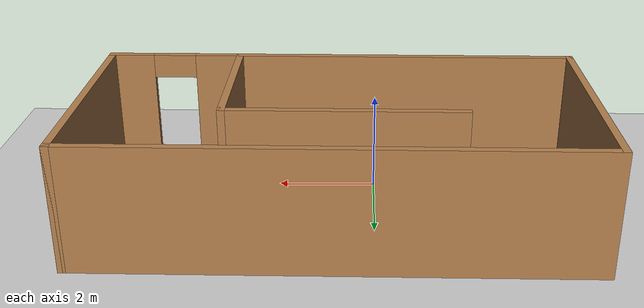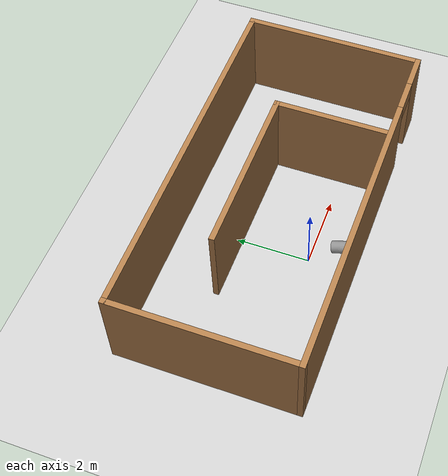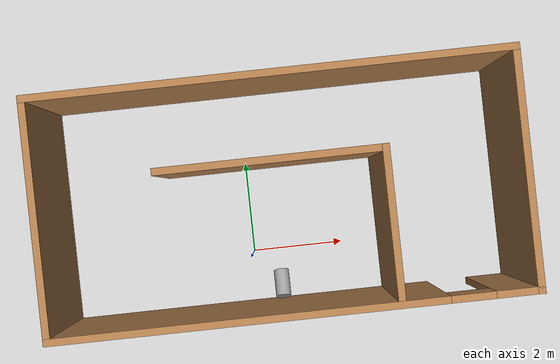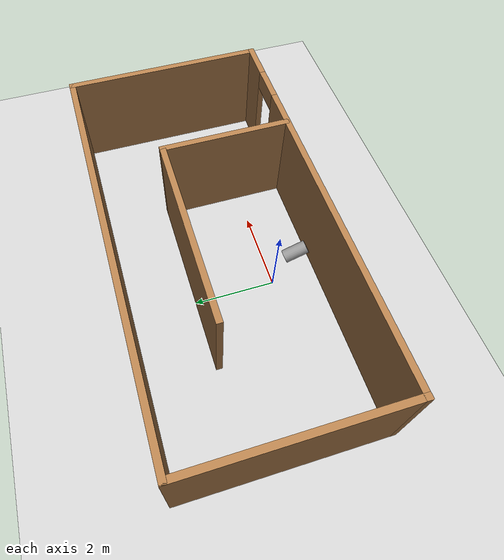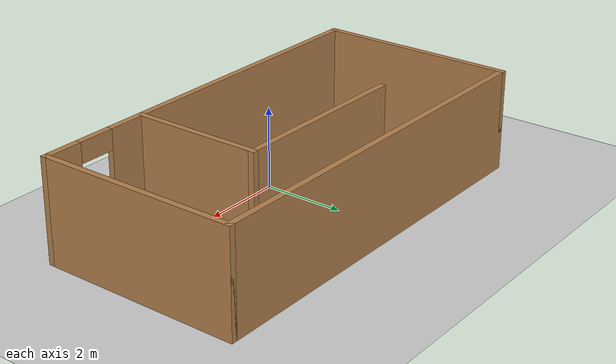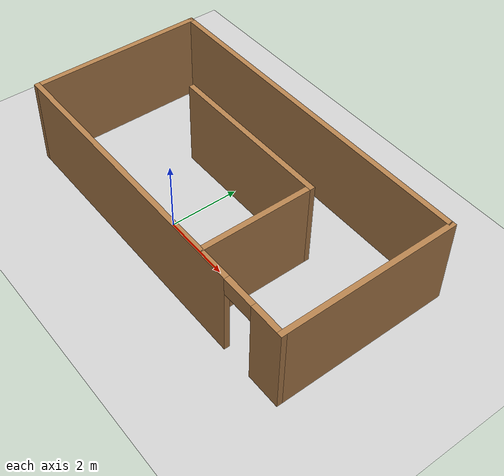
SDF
<sdf version="1.6">
 <world name="default">
  <light name="sun" type="directional">
   <pose>0 0 10 0 -0 0</pose>
   <diffuse>0.8 0.8 0.8 1</diffuse>
   <specular>0.2 0.2 0.2 1</specular>
   <attenuation>
    <range>1000</range>
    <constant>0.9</constant>
    <linear>0.01</linear>
    <quadratic>0.001</quadratic>
   </attenuation>
   <direction>-0.5 0.1 -0.9</direction>
  </light>
  <model name="ground_plane">
   <static>1</static>
   <link name="link">
    <collision name="collision">
     <geometry><plane><normal>0 0 1</normal><size>100 100</size></plane></geometry>
     <surface>
      <contact><collide_bitmask>65535</collide_bitmask></contact>
      <friction><ode><mu>100</mu><mu2>50</mu2></ode></friction>
     </surface>
    </collision>
    <visual name="visual">
     <cast_shadows>0</cast_shadows>
     <geometry><plane><normal>0 0 1</normal><size>100 100</size></plane></geometry>
     <material>
      <script><uri>file://media/materials/scripts/gazebo.material</uri><name>Gazebo/Grey</name></script>
     </material>
    </visual>
   </link>
  </model>
  <gravity>0 0 -9.8</gravity>
  <magnetic_field>6e-06 2.3e-05 -4.2e-05</magnetic_field>
  <atmosphere type="adiabatic"/>
  <physics name="default_physics" default="0" type="ode">
   <max_step_size>0.001</max_step_size>
   <real_time_factor>1</real_time_factor>
   <real_time_update_rate>1000</real_time_update_rate>
  </physics>
  <scene><ambient>0.4 0.4 0.4 1</ambient><background>0.7 0.7 0.7 1</background><shadows>1</shadows></scene>
  <audio><device>default</device></audio>
  <spherical_coordinates>
   <surface_model>EARTH_WGS84</surface_model>
   <latitude_deg>0</latitude_deg>
   <longitude_deg>0</longitude_deg>
   <elevation>0</elevation>
   <heading_deg>0</heading_deg>
  </spherical_coordinates>
  <model name="Room">
   <pose>0.747122 1.21423 0 0 -0 0</pose>
   <link name="Wall_2">
    <collision name="Wall_2_Collision">
     <geometry><box><size>10 0.15 2.5</size></box></geometry>
     <pose>0 0 1.25 0 -0 0</pose>
    </collision>
    <visual name="Wall_2_Visual">
     <pose>0 0 1.25 0 -0 0</pose>
     <geometry><box><size>10 0.15 2.5</size></box></geometry>
     <material>
      <script><uri>file://media/materials/scripts/gazebo.material</uri><name>Gazebo/Wood</name></script>
      <ambient>1 1 1 1</ambient>
     </material>
     <meta><layer>0</layer></meta>
    </visual>
    <pose>0 2.425 0 0 -0 0</pose>
   </link>
   <link name="Wall_3">
    <collision name="Wall_3_Collision">
     <geometry><box><size>5 0.15 2.5</size></box></geometry>
     <pose>0 0 1.25 0 -0 0</pose>
    </collision>
    <visual name="Wall_3_Visual">
     <pose>0 0 1.25 0 -0 0</pose>
     <geometry><box><size>5 0.15 2.5</size></box></geometry>
     <material>
      <script><uri>file://media/materials/scripts/gazebo.material</uri><name>Gazebo/Wood</name></script>
      <ambient>1 1 1 1</ambient>
     </material>
     <meta><layer>0</layer></meta>
    </visual>
    <pose>4.925 0 0 0 -0 -1.5708</pose>
   </link>
   <link name="Wall_4">
    <pose>0 -2.425 0 0 -0 3.14159</pose>
    <visual name="Wall_4_Visual_0">
     <pose>-4.51185 0 1.25 0 -0 0</pose>
     <geometry><box><size>0.976297 0.15 2.5</size></box></geometry>
     <material>
      <script><uri>file://media/materials/scripts/gazebo.material</uri><name>Gazebo/Wood</name></script>
      <ambient>1 1 1 1</ambient>
     </material>
     <meta><layer>0</layer></meta>
    </visual>
    <collision name="Wall_4_Collision_0">
     <geometry><box><size>0.976297 0.15 2.5</size></box></geometry>
     <pose>-4.51185 0 1.25 0 -0 0</pose>
    </collision>
    <visual name="Wall_4_Visual_1">
     <pose>0.938149 0 1.25 0 -0 0</pose>
     <geometry><box><size>8.1237 0.15 2.5</size></box></geometry>
     <material>
      <script><uri>file://media/materials/scripts/gazebo.material</uri><name>Gazebo/Wood</name></script>
      <ambient>1 1 1 1</ambient>
     </material>
     <meta><layer>0</layer></meta>
    </visual>
    <collision name="Wall_4_Collision_1">
     <geometry><box><size>8.1237 0.15 2.5</size></box></geometry>
     <pose>0.938149 0 1.25 0 -0 0</pose>
    </collision>
    <visual name="Wall_4_Visual_2">
     <pose>-3.5737 0 2.25 0 -0 0</pose>
     <geometry><box><size>0.9 0.15 0.5</size></box></geometry>
     <material>
      <script><uri>file://media/materials/scripts/gazebo.material</uri><name>Gazebo/Wood</name></script>
      <ambient>1 1 1 1</ambient>
     </material>
     <meta><layer>0</layer></meta>
    </visual>
    <collision name="Wall_4_Collision_2">
     <geometry><box><size>0.9 0.15 0.5</size></box></geometry>
     <pose>-3.5737 0 2.25 0 -0 0</pose>
    </collision>
   </link>
   <link name="Wall_5">
    <collision name="Wall_5_Collision">
     <geometry><box><size>5 0.15 2.5</size></box></geometry>
     <pose>0 0 1.25 0 -0 0</pose>
    </collision>
    <visual name="Wall_5_Visual">
     <pose>0 0 1.25 0 -0 0</pose>
     <geometry><box><size>5 0.15 2.5</size></box></geometry>
     <material>
      <script><uri>file://media/materials/scripts/gazebo.material</uri><name>Gazebo/Wood</name></script>
      <ambient>1 1 1 1</ambient>
     </material>
     <meta><layer>0</layer></meta>
    </visual>
    <pose>-4.925 0 0 0 -0 1.5708</pose>
   </link>
   <link name="Wall_7">
    <collision name="Wall_7_Collision">
     <geometry><box><size>3.25 0.15 2.5</size></box></geometry>
     <pose>0 0 1.25 0 -0 0</pose>
    </collision>
    <visual name="Wall_7_Visual">
     <pose>0 0 1.25 0 -0 0</pose>
     <geometry><box><size>3.25 0.15 2.5</size></box></geometry>
     <material>
      <script><uri>file://media/materials/scripts/gazebo.material</uri><name>Gazebo/Wood</name></script>
      <ambient>1 1 1 1</ambient>
     </material>
     <meta><layer>0</layer></meta>
    </visual>
    <pose>2.15808 -0.837552 0 0 -0 1.5708</pose>
   </link>
   <link name="Wall_8">
    <collision name="Wall_8_Collision">
     <geometry><box><size>4.75 0.15 2.5</size></box></geometry>
     <pose>0 0 1.25 0 -0 0</pose>
    </collision>
    <visual name="Wall_8_Visual">
     <pose>0 0 1.25 0 -0 0</pose>
     <geometry><box><size>4.75 0.15 2.5</size></box></geometry>
     <material>
      <script><uri>file://media/materials/scripts/gazebo.material</uri><name>Gazebo/Wood</name></script>
      <ambient>1 1 1 1</ambient>
     </material>
     <meta><layer>0</layer></meta>
    </visual>
    <pose>-0.141924 0.712448 0 0 -0 3.14159</pose>
   </link>
   <static>1</static>
  </model>
  <model name="unit_cylinder">
   <pose>0.561359 -0.790605 0.269888 -0.023776 1.18934 -1.59099</pose>
   <link name="link">
    <inertial>
     <mass>1</mass>
     <inertia><ixx>0.145833</ixx><ixy>0</ixy><ixz>0</ixz><iyy>0.145833</iyy><iyz>0</iyz><izz>0.125</izz></inertia>
    </inertial>
    <collision name="collision">
     <geometry><cylinder><radius>0.168803</radius><length>0.608387</length></cylinder></geometry>
    </collision>
    <visual name="visual">
     <geometry><cylinder><radius>0.168803</radius><length>0.608387</length></cylinder></geometry>
     <material>
      <script><name>Gazebo/Grey</name><uri>file://media/materials/scripts/gazebo.material</uri></script>
     </material>
    </visual>
   </link>
  </model>
 </world>
</sdf>
